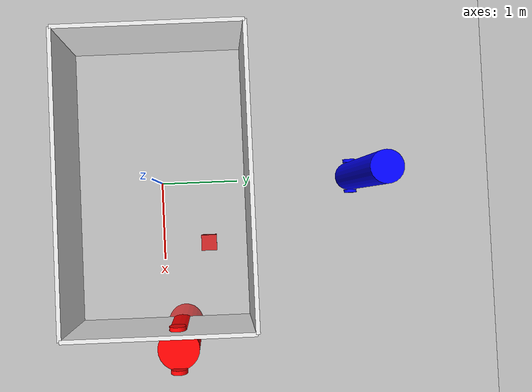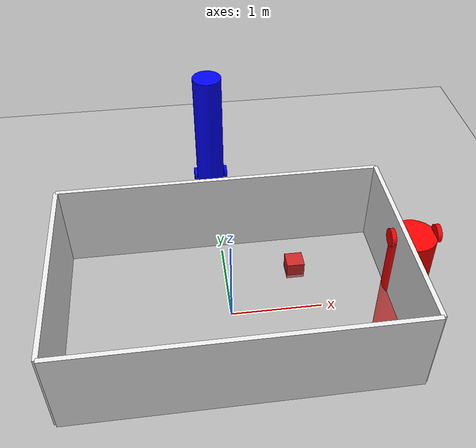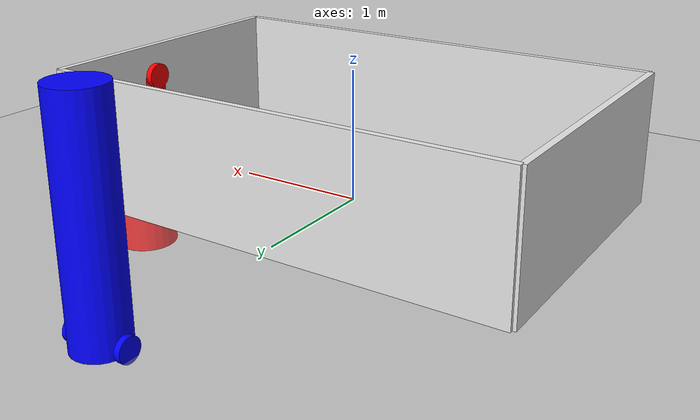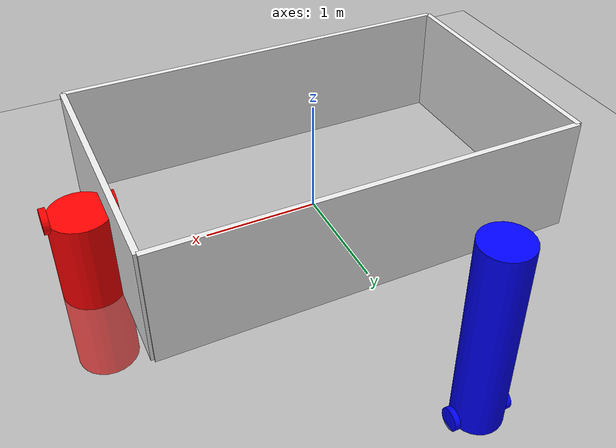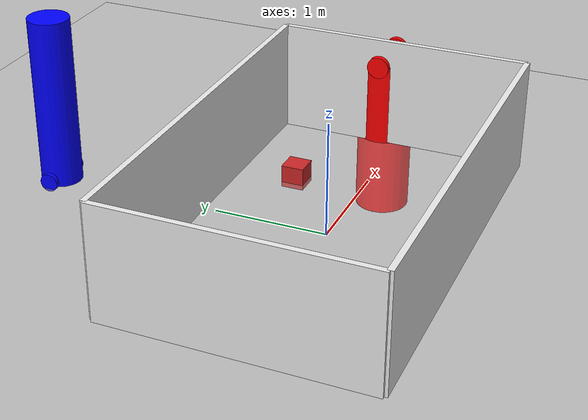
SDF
<sdf version="1.7">
 <world name="new_simple_room">
  <light name="sun" type="directional">
   <pose>0 0 10 0 0 0</pose>
   <diffuse>0.8 0.8 0.8 1</diffuse>
   <specular>0.2 0.2 0.2 1</specular>
   <attenuation>
    <range>1000</range>
    <constant>0.9</constant>
    <linear>0.01</linear>
    <quadratic>0.001</quadratic>
   </attenuation>
   <direction>-0.5 0.1 -0.9</direction>
  </light>
  <model name="ground_plane">
   <static>true</static>
   <link name="link">
    <collision name="collision">
     <geometry><plane><normal>0 0 1</normal><size>3.6 2.25</size></plane></geometry>
     <surface><friction><ode><mu>100</mu><mu2>50</mu2></ode></friction></surface>
    </collision>
    <visual name="visual">
     <cast_shadows>false</cast_shadows>
     <geometry><plane><normal>0 0 1</normal><size>10 10</size></plane></geometry>
     <material>
      <script><uri>file://media/materials/scripts/gazebo.material</uri><name>Gazebo/Grey</name></script>
     </material>
    </visual>
   </link>
  </model>
  <model name="north_wall">
   <static>true</static>
   <pose>0 1.125 0.5 0 0 0</pose>
   <link name="link">
    <collision name="collision"><geometry><box><size>3.6 0.05 1</size></box></geometry></collision>
    <visual name="visual">
     <geometry><box><size>3.6 0.05 1</size></box></geometry>
     <material><script><name>Gazebo/White</name></script></material>
    </visual>
   </link>
  </model>
  <model name="south_wall">
   <static>true</static>
   <pose>0 -1.125 0.5 0 0 0</pose>
   <link name="link">
    <collision name="collision"><geometry><box><size>3.6 0.05 1</size></box></geometry></collision>
    <visual name="visual">
     <geometry><box><size>3.6 0.05 1</size></box></geometry>
     <material><script><name>Gazebo/White</name></script></material>
    </visual>
   </link>
  </model>
  <model name="east_wall">
   <static>true</static>
   <pose>1.8 0 0.5 0 0 1.57</pose>
   <link name="link">
    <collision name="collision"><geometry><box><size>2.25 0.05 1</size></box></geometry></collision>
    <visual name="visual">
     <geometry><box><size>2.25 0.05 1</size></box></geometry>
     <material><script><name>Gazebo/White</name></script></material>
    </visual>
   </link>
  </model>
  <model name="west_wall">
   <static>true</static>
   <pose>-1.8 0 0.5 0 0 1.57</pose>
   <link name="link">
    <collision name="collision"><geometry><box><size>2.25 0.05 1</size></box></geometry></collision>
    <visual name="visual">
     <geometry><box><size>2.25 0.05 1</size></box></geometry>
     <material><script><name>Gazebo/White</name></script></material>
    </visual>
   </link>
  </model>
  <model name="toy">
   <static>true</static>
   <pose>0.8 0.6 0.05 0 0 0</pose>
   <link name="link">
    <collision name="collision"><geometry><box><size>0.2 0.2 0.2</size></box></geometry></collision>
    <visual name="visual">
     <geometry><box><size>0.2 0.2 0.2</size></box></geometry>
     <material><script><name>Gazebo/Red</name></script></material>
    </visual>
   </link>
  </model>
  <model name="human_owner">
   <pose>0 2.5 0 0 0 0</pose>
   <static>false</static>
   <link name="body">
    <pose>0 0 0.75 0 0 0</pose>
    <inertial><mass>30</mass><inertia><ixx>1.2</ixx><iyy>1.2</iyy><izz>0.2</izz></inertia></inertial>
    <collision name="body_collision">
     <geometry><cylinder><radius>0.18</radius><length>1.50</length></cylinder></geometry>
    </collision>
    <visual name="body_visual">
     <geometry><cylinder><radius>0.18</radius><length>1.50</length></cylinder></geometry>
     <material><ambient>0 0 1 1</ambient></material>
    </visual>
   </link>
   <link name="left_wheel">
    <pose>-0.20 0 0.05 0 1.57 0</pose>
    <inertial><mass>2</mass><inertia><ixx>0.005</ixx><iyy>0.005</iyy><izz>0.005</izz></inertia></inertial>
    <collision name="left_wheel_collision">
     <geometry><cylinder><radius>0.08</radius><length>0.04</length></cylinder></geometry>
    </collision>
    <visual name="left_wheel_visual">
     <geometry><cylinder><radius>0.08</radius><length>0.04</length></cylinder></geometry>
     <material><ambient>0 0 1 1</ambient></material>
    </visual>
   </link>
   <link name="right_wheel">
    <pose>0.20 0 0.05 0 1.57 0</pose>
    <inertial><mass>2</mass><inertia><ixx>0.005</ixx><iyy>0.005</iyy><izz>0.005</izz></inertia></inertial>
    <collision name="right_wheel_collision">
     <geometry><cylinder><radius>0.08</radius><length>0.04</length></cylinder></geometry>
    </collision>
    <visual name="right_wheel_visual">
     <geometry><cylinder><radius>0.08</radius><length>0.04</length></cylinder></geometry>
     <material><ambient>0 0 1 1</ambient></material>
    </visual>
   </link>
   <joint name="body_left_wheel_joint" type="revolute">
    <parent>body</parent>
    <child>left_wheel</child>
    <axis><xyz>0 0 1</xyz></axis>
   </joint>
   <joint name="body_right_wheel_joint" type="revolute">
    <parent>body</parent>
    <child>right_wheel</child>
    <axis><xyz>0 0 1</xyz></axis>
   </joint>
   <plugin name="diff_drive_human_owner" filename="libgazebo_ros_diff_drive.so">
    <ros><namespace>/human_owner</namespace><argument>~/cmd_vel:=cmd_vel</argument></ros>
    <wheel_separation>0.40</wheel_separation>
    <wheel_diameter>0.16</wheel_diameter>
    <left_joint>body_left_wheel_joint</left_joint>
    <right_joint>body_right_wheel_joint</right_joint>
    <publish_tf>true</publish_tf>
    <publish_wheel_tf>false</publish_wheel_tf>
    <update_rate>50</update_rate>
   </plugin>
  </model>
  <model name="human_stranger">
   <pose>2 0.2 0 0 0 0</pose>
   <static>false</static>
   <link name="body">
    <visual name="body_visual">
     <geometry><cylinder><radius>0.25</radius><length>1.5</length></cylinder></geometry>
     <material><ambient>1 0 0 1</ambient></material>
    </visual>
    <collision name="body_collision">
     <geometry><cylinder><radius>0.25</radius><length>1.5</length></cylinder></geometry>
    </collision>
   </link>
   <link name="left_wheel">
    <pose>-0.25 0 0.75 0 1.57 0</pose>
    <visual name="left_wheel_visual">
     <geometry><cylinder><radius>0.1</radius><length>0.05</length></cylinder></geometry>
     <material><ambient>1 0 0 1</ambient></material>
    </visual>
    <collision name="left_wheel_collision">
     <geometry><cylinder><radius>0.1</radius><length>0.05</length></cylinder></geometry>
    </collision>
   </link>
   <link name="right_wheel">
    <pose>0.25 0 0.75 0 1.57 0</pose>
    <visual name="right_wheel_visual">
     <geometry><cylinder><radius>0.1</radius><length>0.05</length></cylinder></geometry>
     <material><ambient>1 0 0 1</ambient></material>
    </visual>
    <collision name="right_wheel_collision">
     <geometry><cylinder><radius>0.1</radius><length>0.05</length></cylinder></geometry>
    </collision>
   </link>
   <joint name="body_left_wheel_joint" type="revolute">
    <parent>body</parent>
    <child>left_wheel</child>
    <axis><xyz>0 0 1</xyz></axis>
   </joint>
   <joint name="body_right_wheel_joint" type="revolute">
    <parent>body</parent>
    <child>right_wheel</child>
    <axis><xyz>0 0 1</xyz></axis>
   </joint>
   <plugin name="diff_drive_human_stranger" filename="libgazebo_ros_diff_drive.so">
    <ros><namespace>/human_stranger</namespace><argument>~/cmd_vel:=cmd_vel</argument></ros>
    <wheel_separation>0.5</wheel_separation>
    <wheel_diameter>0.2</wheel_diameter>
    <left_joint>body_left_wheel_joint</left_joint>
    <right_joint>body_right_wheel_joint</right_joint>
    <publish_tf>true</publish_tf>
    <publish_wheel_tf>false</publish_wheel_tf>
    <update_rate>20</update_rate>
   </plugin>
  </model>
  <physics type="ode"><gravity>0 0 -9.8</gravity><real_time_update_rate>1000.0</real_time_update_rate></physics>
 </world>
</sdf>
